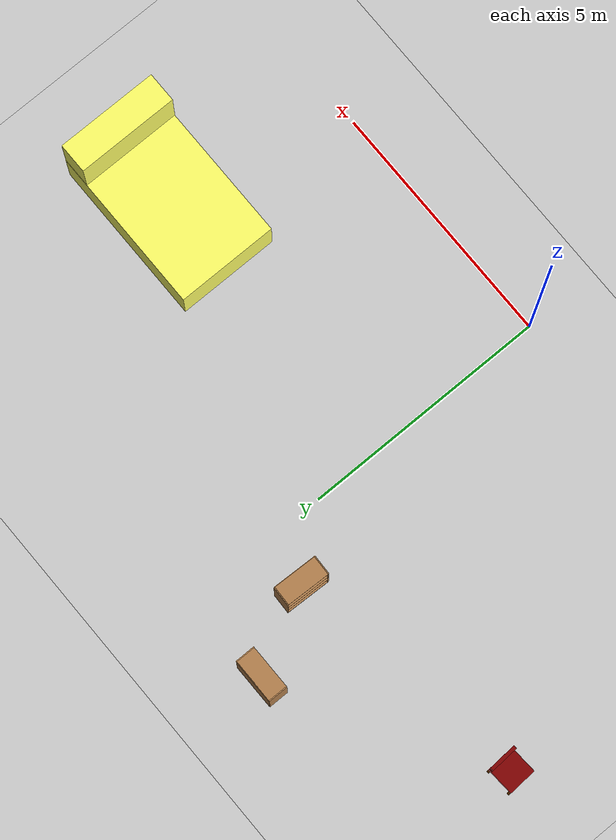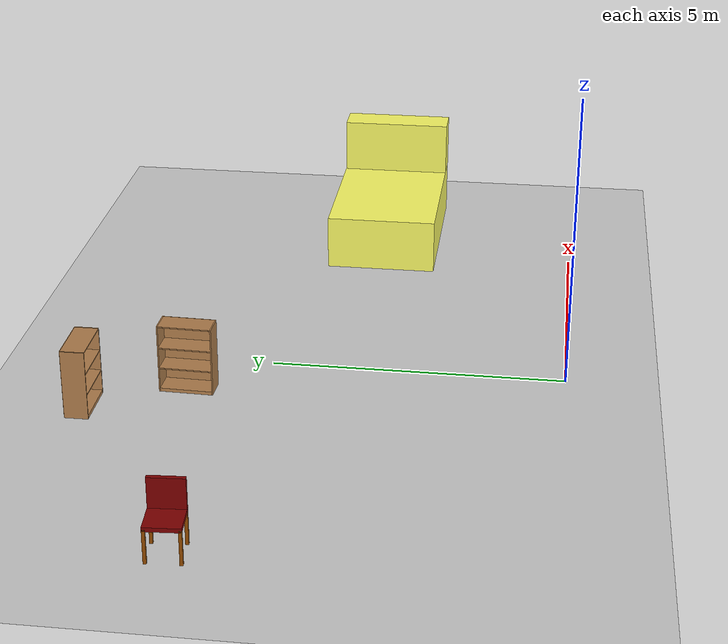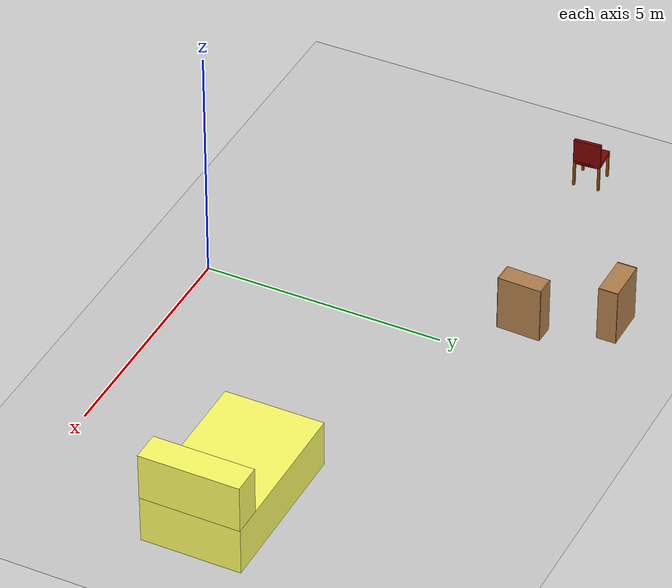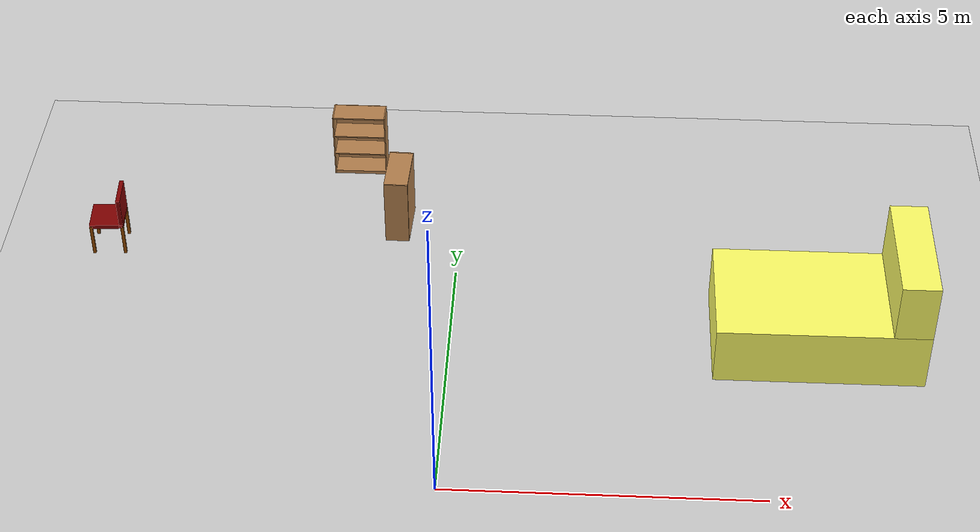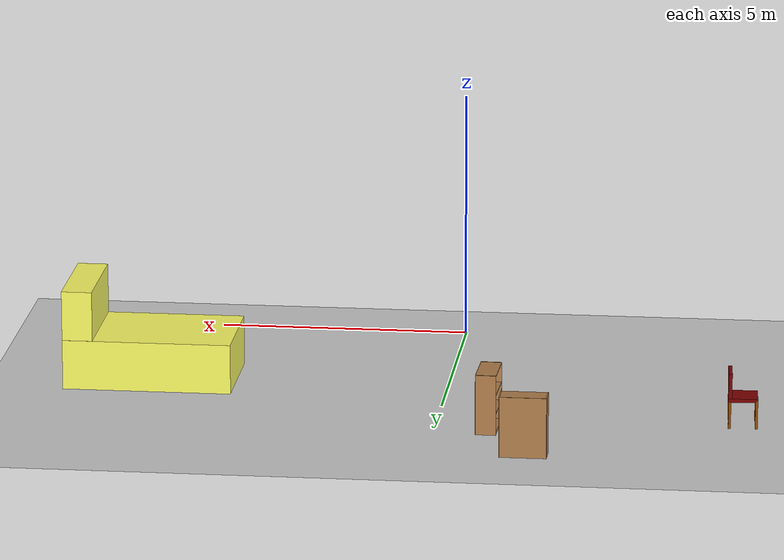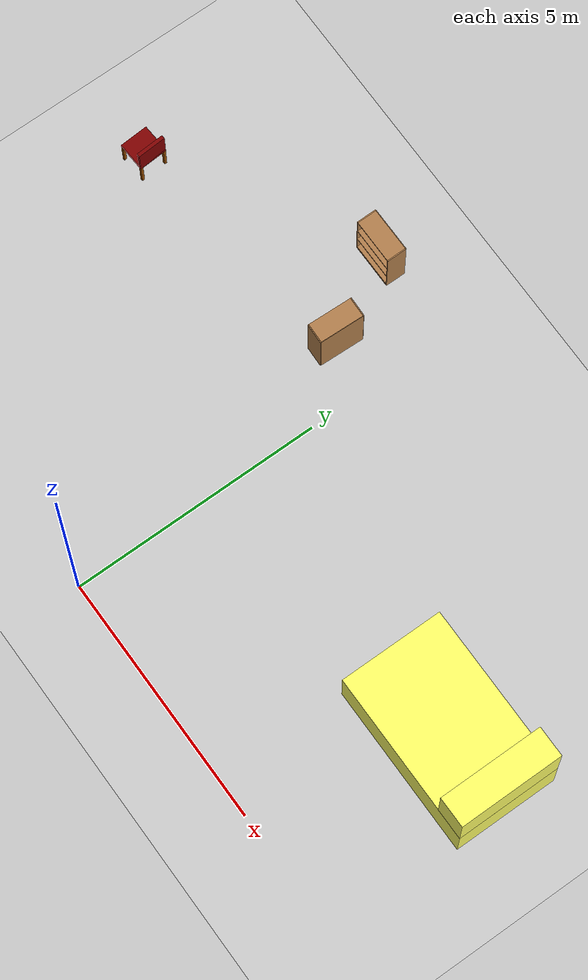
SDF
<sdf version="1.6">
 <world name="default">
  <model name="ground_plane">
   <static>1</static>
   <link name="link">
    <collision name="collision">
     <geometry><plane><normal>0 0 1</normal><size>100 100</size></plane></geometry>
     <surface>
      <contact><collide_bitmask>65535</collide_bitmask></contact>
      <friction><ode><mu>100</mu><mu2>50</mu2></ode></friction>
     </surface>
    </collision>
    <visual name="visual">
     <cast_shadows>0</cast_shadows>
     <geometry><plane><normal>0 0 1</normal><size>100 100</size></plane></geometry>
     <material>
      <script><uri>file://media/materials/scripts/gazebo.material</uri><name>Gazebo/Grey</name></script>
     </material>
    </visual>
   </link>
  </model>
  <model name="chair_1">
   <link name="link_0">
    <inertial>
     <mass>1</mass>
     <inertia>
      <ixx>0.166667</ixx>
      <ixy>0</ixy>
      <ixz>0</ixz>
      <iyy>0.166667</iyy>
      <iyz>0</iyz>
      <izz>0.166667</izz>
     </inertia>
    </inertial>
    <pose>0.000435 0.041667 0.148333 0 -0 0</pose>
    <visual name="visual">
     <geometry><box><size>0.57 0.57 0.07</size></box></geometry>
     <material>
      <lighting>1</lighting>
      <script><uri>file://media/materials/scripts/gazebo.material</uri><name>Gazebo/Grey</name></script>
      <shader type="vertex"><normal_map>__default__</normal_map></shader>
      <ambient>0.502 0 0 1</ambient>
      <diffuse>0.7 0.7 0.7 1</diffuse>
      <specular>0.01 0.01 0.01 1</specular>
      <emissive>0 0 0 1</emissive>
     </material>
    </visual>
    <collision name="collision">
     <geometry><box><size>0.57 0.57 0.07</size></box></geometry>
     <surface>
      <friction>
       <ode><mu>1</mu><mu2>1</mu2><fdir1>0 0 0</fdir1><slip1>0</slip1><slip2>0</slip2></ode>
       <torsional>
        <coefficient>1</coefficient>
        <patch_radius>0</patch_radius>
        <surface_radius>0</surface_radius>
        <use_patch_radius>1</use_patch_radius>
        <ode><slip>0</slip></ode>
       </torsional>
      </friction>
      <bounce><restitution_coefficient>0</restitution_coefficient><threshold>1e+06</threshold></bounce>
      <contact>
       <collide_without_contact>0</collide_without_contact>
       <collide_without_contact_bitmask>1</collide_without_contact_bitmask>
       <collide_bitmask>1</collide_bitmask>
       <ode>
        <soft_cfm>0</soft_cfm>
        <soft_erp>0.2</soft_erp>
        <kp>1e+13</kp>
        <kd>1</kd>
        <max_vel>0.01</max_vel>
        <min_depth>0</min_depth>
       </ode>
       <bullet>
        <split_impulse>1</split_impulse>
        <split_impulse_penetration_threshold>-0.01</split_impulse_penetration_threshold>
        <soft_cfm>0</soft_cfm>
        <soft_erp>0.2</soft_erp>
        <kp>1e+13</kp>
        <kd>1</kd>
       </bullet>
      </contact>
     </surface>
    </collision>
   </link>
   <link name="link_1">
    <inertial>
     <mass>1</mass>
     <inertia>
      <ixx>0.166667</ixx>
      <ixy>0</ixy>
      <ixz>0</ixz>
      <iyy>0.166667</iyy>
      <iyz>0</iyz>
      <izz>0.166667</izz>
     </inertia>
    </inertial>
    <pose>0.000435 -0.208333 0.398333 0 -0 0</pose>
    <visual name="visual">
     <geometry><box><size>0.57 0.07 0.57</size></box></geometry>
     <material>
      <lighting>1</lighting>
      <script><uri>file://media/materials/scripts/gazebo.material</uri><name>Gazebo/Grey</name></script>
      <shader type="vertex"><normal_map>__default__</normal_map></shader>
      <ambient>0.502 0 0 1</ambient>
      <diffuse>0.7 0.7 0.7 1</diffuse>
      <specular>0.01 0.01 0.01 1</specular>
      <emissive>0 0 0 1</emissive>
     </material>
    </visual>
    <collision name="collision">
     <geometry><box><size>0.57 0.07 0.57</size></box></geometry>
     <surface>
      <friction>
       <ode><mu>1</mu><mu2>1</mu2><fdir1>0 0 0</fdir1><slip1>0</slip1><slip2>0</slip2></ode>
       <torsional>
        <coefficient>1</coefficient>
        <patch_radius>0</patch_radius>
        <surface_radius>0</surface_radius>
        <use_patch_radius>1</use_patch_radius>
        <ode><slip>0</slip></ode>
       </torsional>
      </friction>
      <bounce><restitution_coefficient>0</restitution_coefficient><threshold>1e+06</threshold></bounce>
      <contact>
       <collide_without_contact>0</collide_without_contact>
       <collide_without_contact_bitmask>1</collide_without_contact_bitmask>
       <collide_bitmask>1</collide_bitmask>
       <ode>
        <soft_cfm>0</soft_cfm>
        <soft_erp>0.2</soft_erp>
        <kp>1e+13</kp>
        <kd>1</kd>
        <max_vel>0.01</max_vel>
        <min_depth>0</min_depth>
       </ode>
       <bullet>
        <split_impulse>1</split_impulse>
        <split_impulse_penetration_threshold>-0.01</split_impulse_penetration_threshold>
        <soft_cfm>0</soft_cfm>
        <soft_erp>0.2</soft_erp>
        <kp>1e+13</kp>
        <kd>1</kd>
       </bullet>
      </contact>
     </surface>
    </collision>
   </link>
   <link name="link_2">
    <inertial>
     <mass>1</mass>
     <inertia>
      <ixx>0.166667</ixx>
      <ixy>0</ixy>
      <ixz>0</ixz>
      <iyy>0.166667</iyy>
      <iyz>0</iyz>
      <izz>0.166667</izz>
     </inertia>
    </inertial>
    <pose>0.257825 -0.218333 -0.136667 0 -0 0</pose>
    <visual name="visual">
     <geometry><box><size>0.05 0.05 0.57</size></box></geometry>
     <material>
      <lighting>1</lighting>
      <script><uri>file://media/materials/scripts/gazebo.material</uri><name>Gazebo/Grey</name></script>
      <shader type="vertex"><normal_map>__default__</normal_map></shader>
      <ambient>0.588 0.294 0 1</ambient>
      <diffuse>0.7 0.7 0.7 1</diffuse>
      <specular>0.01 0.01 0.01 1</specular>
      <emissive>0 0 0 1</emissive>
     </material>
    </visual>
    <collision name="collision">
     <geometry><box><size>0.05 0.05 0.57</size></box></geometry>
     <surface>
      <friction>
       <ode><mu>1</mu><mu2>1</mu2><fdir1>0 0 0</fdir1><slip1>0</slip1><slip2>0</slip2></ode>
       <torsional>
        <coefficient>1</coefficient>
        <patch_radius>0</patch_radius>
        <surface_radius>0</surface_radius>
        <use_patch_radius>1</use_patch_radius>
        <ode><slip>0</slip></ode>
       </torsional>
      </friction>
      <bounce><restitution_coefficient>0</restitution_coefficient><threshold>1e+06</threshold></bounce>
      <contact>
       <collide_without_contact>0</collide_without_contact>
       <collide_without_contact_bitmask>1</collide_without_contact_bitmask>
       <collide_bitmask>1</collide_bitmask>
       <ode>
        <soft_cfm>0</soft_cfm>
        <soft_erp>0.2</soft_erp>
        <kp>1e+13</kp>
        <kd>1</kd>
        <max_vel>0.01</max_vel>
        <min_depth>0</min_depth>
       </ode>
       <bullet>
        <split_impulse>1</split_impulse>
        <split_impulse_penetration_threshold>-0.01</split_impulse_penetration_threshold>
        <soft_cfm>0</soft_cfm>
        <soft_erp>0.2</soft_erp>
        <kp>1e+13</kp>
        <kd>1</kd>
       </bullet>
      </contact>
     </surface>
    </collision>
   </link>
   <link name="link_2_clone">
    <inertial>
     <mass>1</mass>
     <inertia>
      <ixx>0.166667</ixx>
      <ixy>0</ixy>
      <ixz>0</ixz>
      <iyy>0.166667</iyy>
      <iyz>0</iyz>
      <izz>0.166667</izz>
     </inertia>
    </inertial>
    <pose>-0.259565 -0.218333 -0.136667 0 -0 0</pose>
    <visual name="visual">
     <geometry><box><size>0.05 0.05 0.57</size></box></geometry>
     <material>
      <lighting>1</lighting>
      <script><uri>file://media/materials/scripts/gazebo.material</uri><name>Gazebo/Grey</name></script>
      <shader type="vertex"><normal_map>__default__</normal_map></shader>
      <ambient>0.588 0.294 0 1</ambient>
      <diffuse>0.7 0.7 0.7 1</diffuse>
      <specular>0.01 0.01 0.01 1</specular>
      <emissive>0 0 0 1</emissive>
     </material>
    </visual>
    <collision name="collision">
     <geometry><box><size>0.05 0.05 0.57</size></box></geometry>
     <surface>
      <friction>
       <ode><mu>1</mu><mu2>1</mu2><fdir1>0 0 0</fdir1><slip1>0</slip1><slip2>0</slip2></ode>
       <torsional>
        <coefficient>1</coefficient>
        <patch_radius>0</patch_radius>
        <surface_radius>0</surface_radius>
        <use_patch_radius>1</use_patch_radius>
        <ode><slip>0</slip></ode>
       </torsional>
      </friction>
      <bounce><restitution_coefficient>0</restitution_coefficient><threshold>1e+06</threshold></bounce>
      <contact>
       <collide_without_contact>0</collide_without_contact>
       <collide_without_contact_bitmask>1</collide_without_contact_bitmask>
       <collide_bitmask>1</collide_bitmask>
       <ode>
        <soft_cfm>0</soft_cfm>
        <soft_erp>0.2</soft_erp>
        <kp>1e+13</kp>
        <kd>1</kd>
        <max_vel>0.01</max_vel>
        <min_depth>0</min_depth>
       </ode>
       <bullet>
        <split_impulse>1</split_impulse>
        <split_impulse_penetration_threshold>-0.01</split_impulse_penetration_threshold>
        <soft_cfm>0</soft_cfm>
        <soft_erp>0.2</soft_erp>
        <kp>1e+13</kp>
        <kd>1</kd>
       </bullet>
      </contact>
     </surface>
    </collision>
   </link>
   <link name="link_2_clone_clone">
    <inertial>
     <mass>1</mass>
     <inertia>
      <ixx>0.166667</ixx>
      <ixy>0</ixy>
      <ixz>0</ixz>
      <iyy>0.166667</iyy>
      <iyz>0</iyz>
      <izz>0.166667</izz>
     </inertia>
    </inertial>
    <pose>-0.259565 0.301667 -0.136667 0 -0 0</pose>
    <visual name="visual">
     <geometry><box><size>0.05 0.05 0.57</size></box></geometry>
     <material>
      <lighting>1</lighting>
      <script><uri>file://media/materials/scripts/gazebo.material</uri><name>Gazebo/Grey</name></script>
      <shader type="vertex"><normal_map>__default__</normal_map></shader>
      <ambient>0.588 0.294 0 1</ambient>
      <diffuse>0.7 0.7 0.7 1</diffuse>
      <specular>0.01 0.01 0.01 1</specular>
      <emissive>0 0 0 1</emissive>
     </material>
    </visual>
    <collision name="collision">
     <geometry><box><size>0.05 0.05 0.57</size></box></geometry>
     <surface>
      <friction>
       <ode><mu>1</mu><mu2>1</mu2><fdir1>0 0 0</fdir1><slip1>0</slip1><slip2>0</slip2></ode>
       <torsional>
        <coefficient>1</coefficient>
        <patch_radius>0</patch_radius>
        <surface_radius>0</surface_radius>
        <use_patch_radius>1</use_patch_radius>
        <ode><slip>0</slip></ode>
       </torsional>
      </friction>
      <bounce><restitution_coefficient>0</restitution_coefficient><threshold>1e+06</threshold></bounce>
      <contact>
       <collide_without_contact>0</collide_without_contact>
       <collide_without_contact_bitmask>1</collide_without_contact_bitmask>
       <collide_bitmask>1</collide_bitmask>
       <ode>
        <soft_cfm>0</soft_cfm>
        <soft_erp>0.2</soft_erp>
        <kp>1e+13</kp>
        <kd>1</kd>
        <max_vel>0.01</max_vel>
        <min_depth>0</min_depth>
       </ode>
       <bullet>
        <split_impulse>1</split_impulse>
        <split_impulse_penetration_threshold>-0.01</split_impulse_penetration_threshold>
        <soft_cfm>0</soft_cfm>
        <soft_erp>0.2</soft_erp>
        <kp>1e+13</kp>
        <kd>1</kd>
       </bullet>
      </contact>
     </surface>
    </collision>
   </link>
   <link name="link_2_clone_clone_0">
    <inertial>
     <mass>1</mass>
     <inertia>
      <ixx>0.166667</ixx>
      <ixy>0</ixy>
      <ixz>0</ixz>
      <iyy>0.166667</iyy>
      <iyz>0</iyz>
      <izz>0.166667</izz>
     </inertia>
    </inertial>
    <pose>0.260435 0.301667 -0.136667 0 -0 0</pose>
    <visual name="visual">
     <geometry><box><size>0.05 0.05 0.57</size></box></geometry>
     <material>
      <lighting>1</lighting>
      <script><uri>file://media/materials/scripts/gazebo.material</uri><name>Gazebo/Grey</name></script>
      <shader type="vertex"><normal_map>__default__</normal_map></shader>
      <ambient>0.588 0.294 0 1</ambient>
      <diffuse>0.7 0.7 0.7 1</diffuse>
      <specular>0.01 0.01 0.01 1</specular>
      <emissive>0 0 0 1</emissive>
     </material>
    </visual>
    <collision name="collision">
     <geometry><box><size>0.05 0.05 0.57</size></box></geometry>
     <surface>
      <friction>
       <ode><mu>1</mu><mu2>1</mu2><fdir1>0 0 0</fdir1><slip1>0</slip1><slip2>0</slip2></ode>
       <torsional>
        <coefficient>1</coefficient>
        <patch_radius>0</patch_radius>
        <surface_radius>0</surface_radius>
        <use_patch_radius>1</use_patch_radius>
        <ode><slip>0</slip></ode>
       </torsional>
      </friction>
      <bounce><restitution_coefficient>0</restitution_coefficient><threshold>1e+06</threshold></bounce>
      <contact>
       <collide_without_contact>0</collide_without_contact>
       <collide_without_contact_bitmask>1</collide_without_contact_bitmask>
       <collide_bitmask>1</collide_bitmask>
       <ode>
        <soft_cfm>0</soft_cfm>
        <soft_erp>0.2</soft_erp>
        <kp>1e+13</kp>
        <kd>1</kd>
        <max_vel>0.01</max_vel>
        <min_depth>0</min_depth>
       </ode>
       <bullet>
        <split_impulse>1</split_impulse>
        <split_impulse_penetration_threshold>-0.01</split_impulse_penetration_threshold>
        <soft_cfm>0</soft_cfm>
        <soft_erp>0.2</soft_erp>
        <kp>1e+13</kp>
        <kd>1</kd>
       </bullet>
      </contact>
     </surface>
    </collision>
   </link>
   <joint name="link_0_JOINT_0" type="fixed">
    <parent>link_0</parent>
    <child>link_1</child>
    <physics>
     <ode><limit><cfm>0</cfm><erp>0.2</erp></limit><suspension><cfm>0</cfm><erp>0.2</erp></suspension></ode>
    </physics>
   </joint>
   <joint name="link_0_JOINT_4" type="fixed">
    <parent>link_0</parent>
    <child>link_2</child>
    <physics>
     <ode><limit><cfm>0</cfm><erp>0.2</erp></limit><suspension><cfm>0</cfm><erp>0.2</erp></suspension></ode>
    </physics>
   </joint>
   <joint name="link_0_JOINT_5" type="fixed">
    <parent>link_0</parent>
    <child>link_2_clone</child>
    <physics>
     <ode><limit><cfm>0</cfm><erp>0.2</erp></limit><suspension><cfm>0</cfm><erp>0.2</erp></suspension></ode>
    </physics>
   </joint>
   <joint name="link_0_JOINT_6" type="fixed">
    <parent>link_0</parent>
    <child>link_2_clone_clone_0</child>
    <physics>
     <ode><limit><cfm>0</cfm><erp>0.2</erp></limit><suspension><cfm>0</cfm><erp>0.2</erp></suspension></ode>
    </physics>
   </joint>
   <joint name="link_0_JOINT_7" type="fixed">
    <parent>link_0</parent>
    <child>link_2_clone_clone</child>
    <physics>
     <ode><limit><cfm>0</cfm><erp>0.2</erp></limit><suspension><cfm>0</cfm><erp>0.2</erp></suspension></ode>
    </physics>
   </joint>
   <static>0</static>
   <pose>-5.88048 5.52776 0.421668 1e-06 2e-06 1.63366</pose>
  </model>
  <model name="bookshelf">
   <static>1</static>
   <link name="link">
    <inertial><mass>1</mass></inertial>
    <collision name="back">
     <pose>0 0.005 0.6 0 -0 0</pose>
     <geometry><box><size>0.9 0.01 1.2</size></box></geometry>
    </collision>
    <visual name="visual1">
     <pose>0 0.005 0.6 0 -0 0</pose>
     <geometry><box><size>0.9 0.01 1.2</size></box></geometry>
     <material>
      <script><uri>file://media/materials/scripts/gazebo.material</uri><name>Gazebo/Wood</name></script>
     </material>
    </visual>
    <collision name="left_side">
     <pose>0.45 -0.195 0.6 0 -0 0</pose>
     <geometry><box><size>0.02 0.4 1.2</size></box></geometry>
    </collision>
    <visual name="visual2">
     <pose>0.45 -0.195 0.6 0 -0 0</pose>
     <geometry><box><size>0.02 0.4 1.2</size></box></geometry>
     <material>
      <script><uri>file://media/materials/scripts/gazebo.material</uri><name>Gazebo/Wood</name></script>
     </material>
    </visual>
    <collision name="right_side">
     <pose>-0.45 -0.195 0.6 0 -0 0</pose>
     <geometry><box><size>0.02 0.4 1.2</size></box></geometry>
    </collision>
    <visual name="visual3">
     <pose>-0.45 -0.195 0.6 0 -0 0</pose>
     <geometry><box><size>0.02 0.4 1.2</size></box></geometry>
     <material>
      <script><uri>file://media/materials/scripts/gazebo.material</uri><name>Gazebo/Wood</name></script>
     </material>
    </visual>
    <collision name="bottom">
     <pose>0 -0.195 0.03 0 -0 0</pose>
     <geometry><box><size>0.88 0.4 0.06</size></box></geometry>
    </collision>
    <visual name="visual4">
     <pose>0 -0.195 0.03 0 -0 0</pose>
     <geometry><box><size>0.88 0.4 0.06</size></box></geometry>
     <material>
      <script><uri>file://media/materials/scripts/gazebo.material</uri><name>Gazebo/Wood</name></script>
     </material>
    </visual>
    <collision name="top">
     <pose>0 -0.195 1.19 0 -0 0</pose>
     <geometry><box><size>0.88 0.4 0.02</size></box></geometry>
    </collision>
    <visual name="visual5">
     <pose>0 -0.195 1.19 0 -0 0</pose>
     <geometry><box><size>0.88 0.4 0.02</size></box></geometry>
     <material>
      <script><uri>file://media/materials/scripts/gazebo.material</uri><name>Gazebo/Wood</name></script>
     </material>
    </visual>
    <collision name="low_shelf">
     <pose>0 -0.195 0.43 0 -0 0</pose>
     <geometry><box><size>0.88 0.4 0.02</size></box></geometry>
    </collision>
    <visual name="visual6">
     <pose>0 -0.195 0.43 0 -0 0</pose>
     <geometry><box><size>0.88 0.4 0.02</size></box></geometry>
     <material>
      <script><uri>file://media/materials/scripts/gazebo.material</uri><name>Gazebo/Wood</name></script>
     </material>
    </visual>
    <collision name="high_shelf">
     <pose>0 -0.195 0.8 0 -0 0</pose>
     <geometry><box><size>0.88 0.4 0.02</size></box></geometry>
    </collision>
    <visual name="visual7">
     <pose>0 -0.195 0.8 0 -0 0</pose>
     <geometry><box><size>0.88 0.4 0.02</size></box></geometry>
     <material>
      <script><uri>file://media/materials/scripts/gazebo.material</uri><name>Gazebo/Wood</name></script>
     </material>
    </visual>
   </link>
   <pose>-1.85535 8.04776 0 0 -0 0</pose>
  </model>
  <model name="bookshelf_0">
   <static>1</static>
   <link name="link">
    <inertial><mass>1</mass></inertial>
    <collision name="back">
     <pose>0 0.005 0.6 0 -0 0</pose>
     <geometry><box><size>0.9 0.01 1.2</size></box></geometry>
    </collision>
    <visual name="visual1">
     <pose>0 0.005 0.6 0 -0 0</pose>
     <geometry><box><size>0.9 0.01 1.2</size></box></geometry>
     <material>
      <script><uri>file://media/materials/scripts/gazebo.material</uri><name>Gazebo/Wood</name></script>
     </material>
    </visual>
    <collision name="left_side">
     <pose>0.45 -0.195 0.6 0 -0 0</pose>
     <geometry><box><size>0.02 0.4 1.2</size></box></geometry>
    </collision>
    <visual name="visual2">
     <pose>0.45 -0.195 0.6 0 -0 0</pose>
     <geometry><box><size>0.02 0.4 1.2</size></box></geometry>
     <material>
      <script><uri>file://media/materials/scripts/gazebo.material</uri><name>Gazebo/Wood</name></script>
     </material>
    </visual>
    <collision name="right_side">
     <pose>-0.45 -0.195 0.6 0 -0 0</pose>
     <geometry><box><size>0.02 0.4 1.2</size></box></geometry>
    </collision>
    <visual name="visual3">
     <pose>-0.45 -0.195 0.6 0 -0 0</pose>
     <geometry><box><size>0.02 0.4 1.2</size></box></geometry>
     <material>
      <script><uri>file://media/materials/scripts/gazebo.material</uri><name>Gazebo/Wood</name></script>
     </material>
    </visual>
    <collision name="bottom">
     <pose>0 -0.195 0.03 0 -0 0</pose>
     <geometry><box><size>0.88 0.4 0.06</size></box></geometry>
    </collision>
    <visual name="visual4">
     <pose>0 -0.195 0.03 0 -0 0</pose>
     <geometry><box><size>0.88 0.4 0.06</size></box></geometry>
     <material>
      <script><uri>file://media/materials/scripts/gazebo.material</uri><name>Gazebo/Wood</name></script>
     </material>
    </visual>
    <collision name="top">
     <pose>0 -0.195 1.19 0 -0 0</pose>
     <geometry><box><size>0.88 0.4 0.02</size></box></geometry>
    </collision>
    <visual name="visual5">
     <pose>0 -0.195 1.19 0 -0 0</pose>
     <geometry><box><size>0.88 0.4 0.02</size></box></geometry>
     <material>
      <script><uri>file://media/materials/scripts/gazebo.material</uri><name>Gazebo/Wood</name></script>
     </material>
    </visual>
    <collision name="low_shelf">
     <pose>0 -0.195 0.43 0 -0 0</pose>
     <geometry><box><size>0.88 0.4 0.02</size></box></geometry>
    </collision>
    <visual name="visual6">
     <pose>0 -0.195 0.43 0 -0 0</pose>
     <geometry><box><size>0.88 0.4 0.02</size></box></geometry>
     <material>
      <script><uri>file://media/materials/scripts/gazebo.material</uri><name>Gazebo/Wood</name></script>
     </material>
    </visual>
    <collision name="high_shelf">
     <pose>0 -0.195 0.8 0 -0 0</pose>
     <geometry><box><size>0.88 0.4 0.02</size></box></geometry>
    </collision>
    <visual name="visual7">
     <pose>0 -0.195 0.8 0 -0 0</pose>
     <geometry><box><size>0.88 0.4 0.02</size></box></geometry>
     <material>
      <script><uri>file://media/materials/scripts/gazebo.material</uri><name>Gazebo/Wood</name></script>
     </material>
    </visual>
   </link>
   <pose>-0.843321 6.25962 0 0 0 -1.60485</pose>
  </model>
  <model name="bed">
   <link name="link_0">
    <inertial>
     <mass>6.82794</mass>
     <inertia><ixx>2.95336</ixx><ixy>0</ixy><ixz>0</ixz><iyy>6.89905</iyy><iyz>0</iyz><izz>8.71442</izz></inertia>
    </inertial>
    <pose>-0.686745 0.00181 -0.5 0 -0 0</pose>
    <visual name="visual">
     <geometry><box><size>3.35 2.05 1</size></box></geometry>
     <material>
      <lighting>1</lighting>
      <script><uri>file://media/materials/scripts/gazebo.material</uri><name>Gazebo/Grey</name></script>
      <shader type="vertex"><normal_map>__default__</normal_map></shader>
      <ambient>1 1 0.4 1</ambient>
      <diffuse>0.7 0.7 0.7 1</diffuse>
      <specular>0.01 0.01 0.01 1</specular>
      <emissive>0 0 0 1</emissive>
     </material>
    </visual>
    <collision name="collision">
     <geometry><box><size>3.35 2.05 1</size></box></geometry>
     <surface>
      <friction>
       <ode><mu>1</mu><mu2>1</mu2><fdir1>0 0 0</fdir1><slip1>0</slip1><slip2>0</slip2></ode>
       <torsional>
        <coefficient>1</coefficient>
        <patch_radius>0</patch_radius>
        <surface_radius>0</surface_radius>
        <use_patch_radius>1</use_patch_radius>
        <ode><slip>0</slip></ode>
       </torsional>
      </friction>
      <bounce><restitution_coefficient>0</restitution_coefficient><threshold>1e+06</threshold></bounce>
      <contact>
       <collide_without_contact>0</collide_without_contact>
       <collide_without_contact_bitmask>1</collide_without_contact_bitmask>
       <collide_bitmask>1</collide_bitmask>
       <ode>
        <soft_cfm>0</soft_cfm>
        <soft_erp>0.2</soft_erp>
        <kp>1e+13</kp>
        <kd>1</kd>
        <max_vel>0.01</max_vel>
        <min_depth>0</min_depth>
       </ode>
       <bullet>
        <split_impulse>1</split_impulse>
        <split_impulse_penetration_threshold>-0.01</split_impulse_penetration_threshold>
        <soft_cfm>0</soft_cfm>
        <soft_erp>0.2</soft_erp>
        <kp>1e+13</kp>
        <kd>1</kd>
       </bullet>
      </contact>
     </surface>
    </collision>
   </link>
   <link name="link_1">
    <inertial>
     <mass>1.46441</mass>
     <inertia>
      <ixx>0.634881</ixx>
      <ixy>0</ixy>
      <ixz>0</ixz>
      <iyy>0.166371</iyy>
      <iyz>0</iyz>
      <izz>0.557184</izz>
     </inertia>
    </inertial>
    <pose>0.686742 -0.00181 0.5 0 -0 0</pose>
    <visual name="visual">
     <geometry><box><size>0.602759 2.05 1</size></box></geometry>
     <material>
      <lighting>1</lighting>
      <script><uri>file://media/materials/scripts/gazebo.material</uri><name>Gazebo/Grey</name></script>
      <shader type="vertex"><normal_map>__default__</normal_map></shader>
      <ambient>1 1 0.4 1</ambient>
      <diffuse>0.7 0.7 0.7 1</diffuse>
      <specular>0.01 0.01 0.01 1</specular>
      <emissive>0 0 0 1</emissive>
     </material>
    </visual>
    <collision name="collision">
     <geometry><box><size>0.602759 2.05 1</size></box></geometry>
     <surface>
      <friction>
       <ode><mu>1</mu><mu2>1</mu2><fdir1>0 0 0</fdir1><slip1>0</slip1><slip2>0</slip2></ode>
       <torsional>
        <coefficient>1</coefficient>
        <patch_radius>0</patch_radius>
        <surface_radius>0</surface_radius>
        <use_patch_radius>1</use_patch_radius>
        <ode><slip>0</slip></ode>
       </torsional>
      </friction>
      <bounce><restitution_coefficient>0</restitution_coefficient><threshold>1e+06</threshold></bounce>
      <contact>
       <collide_without_contact>0</collide_without_contact>
       <collide_without_contact_bitmask>1</collide_without_contact_bitmask>
       <collide_bitmask>1</collide_bitmask>
       <ode>
        <soft_cfm>0</soft_cfm>
        <soft_erp>0.2</soft_erp>
        <kp>1e+13</kp>
        <kd>1</kd>
        <max_vel>0.01</max_vel>
        <min_depth>0</min_depth>
       </ode>
       <bullet>
        <split_impulse>1</split_impulse>
        <split_impulse_penetration_threshold>-0.01</split_impulse_penetration_threshold>
        <soft_cfm>0</soft_cfm>
        <soft_erp>0.2</soft_erp>
        <kp>1e+13</kp>
        <kd>1</kd>
       </bullet>
      </contact>
     </surface>
    </collision>
   </link>
   <joint name="link_0_JOINT_0" type="fixed">
    <parent>link_0</parent>
    <child>link_1</child>
    <physics>
     <ode><limit><cfm>0</cfm><erp>0.2</erp></limit><suspension><cfm>0</cfm><erp>0.2</erp></suspension></ode>
    </physics>
   </joint>
   <static>0</static>
   <pose>6.58696 3.61709 0.999994 4e-06 -1e-06 -2.3e-05</pose>
  </model>
 </world>
</sdf>
